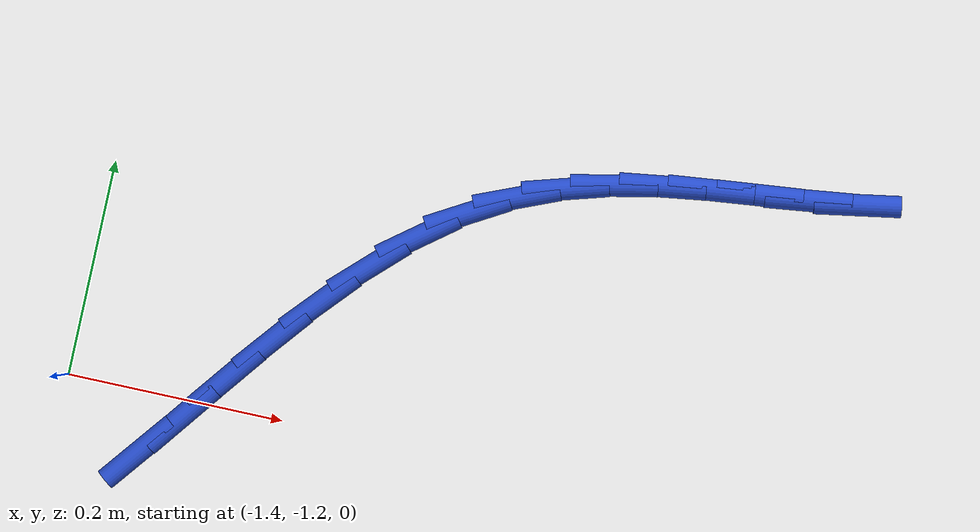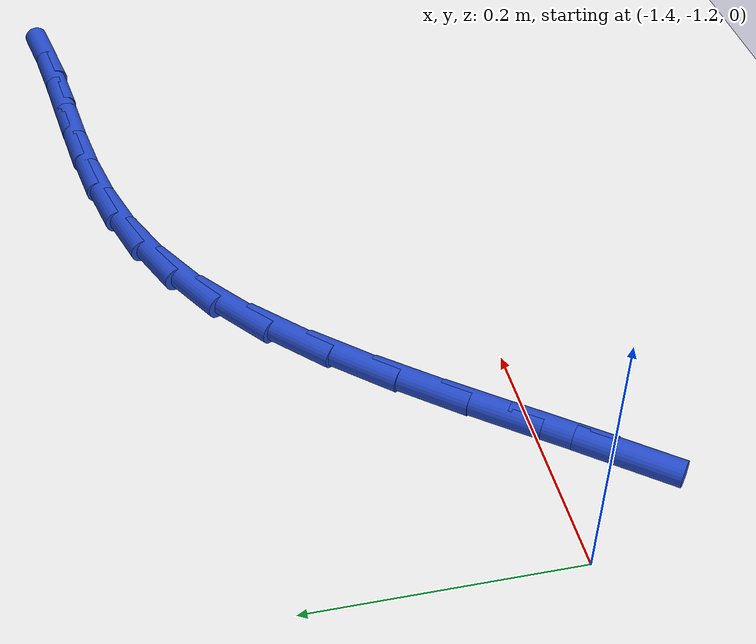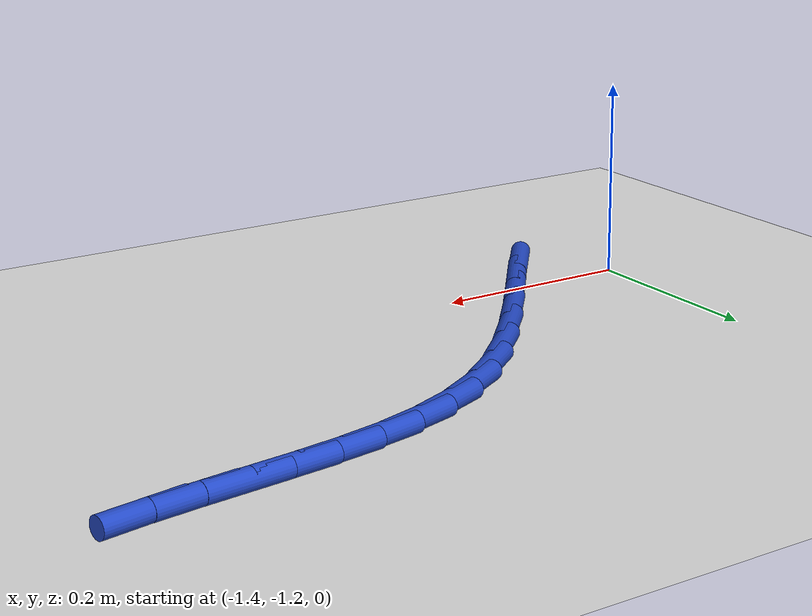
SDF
<sdf version="1.6">
 <world name="default">
  <model name="ground_plane">
   <static>1</static>
   <link name="link">
    <collision name="collision">
     <geometry><plane><normal>0 0 1</normal><size>100 100</size></plane></geometry>
     <surface><friction><ode><mu>100</mu><mu2>50</mu2></ode></friction></surface>
    </collision>
    <visual name="visual">
     <cast_shadows>0</cast_shadows>
     <geometry><plane><normal>0 0 1</normal><size>100 100</size></plane></geometry>
     <material>
      <script><uri>file://media/materials/scripts/gazebo.material</uri><name>Gazebo/WhiteGlow</name></script>
     </material>
    </visual>
   </link>
  </model>
  <model name="line">
   <link name="link_137">
    <pose>-1.3216248220232105 -1.2552656752545743 0.01 0 1.57 0.9041960330804829</pose>
    <collision name="collision">
     <geometry><cylinder><radius>0.01</radius><length>0.08</length></cylinder></geometry>
    </collision>
    <visual name="visual">
     <material>
      <script><name>Gazebo/Blue</name><uri>file://media/materials/scripts/gazebo.material</uri></script>
     </material>
     <geometry><cylinder><radius>0.01</radius><length>0.08</length></cylinder></geometry>
    </visual>
   </link>
   <link name="link_138">
    <pose>-1.2908119132237001 -1.216100146849403 0.01 0 1.57 0.9195410733645156</pose>
    <collision name="collision">
     <geometry><cylinder><radius>0.01</radius><length>0.08</length></cylinder></geometry>
    </collision>
    <visual name="visual">
     <material>
      <script><name>Gazebo/Blue</name><uri>file://media/materials/scripts/gazebo.material</uri></script>
     </material>
     <geometry><cylinder><radius>0.01</radius><length>0.08</length></cylinder></geometry>
    </visual>
   </link>
   <link name="link_139">
    <pose>-1.2584321449544706 -1.1736174365065088 0.01 0 1.57 0.9132504159072549</pose>
    <collision name="collision">
     <geometry><cylinder><radius>0.01</radius><length>0.08</length></cylinder></geometry>
    </collision>
    <visual name="visual">
     <material>
      <script><name>Gazebo/Blue</name><uri>file://media/materials/scripts/gazebo.material</uri></script>
     </material>
     <geometry><cylinder><radius>0.01</radius><length>0.08</length></cylinder></geometry>
    </visual>
   </link>
   <link name="link_140">
    <pose>-1.2245333920120067 -1.1297173761055197 0.01 0 1.57 0.8871897794325092</pose>
    <collision name="collision">
     <geometry><cylinder><radius>0.01</radius><length>0.08</length></cylinder></geometry>
    </collision>
    <visual name="visual">
     <material>
      <script><name>Gazebo/Blue</name><uri>file://media/materials/scripts/gazebo.material</uri></script>
     </material>
     <geometry><cylinder><radius>0.01</radius><length>0.08</length></cylinder></geometry>
    </visual>
   </link>
   <link name="link_141">
    <pose>-1.1891635291927904 -1.0862997975260622 0.01 0 1.57 0.839850976864095</pose>
    <collision name="collision">
     <geometry><cylinder><radius>0.01</radius><length>0.08</length></cylinder></geometry>
    </collision>
    <visual name="visual">
     <material>
      <script><name>Gazebo/Blue</name><uri>file://media/materials/scripts/gazebo.material</uri></script>
     </material>
     <geometry><cylinder><radius>0.01</radius><length>0.08</length></cylinder></geometry>
    </visual>
   </link>
   <link name="link_142">
    <pose>-1.1523704312933039 -1.0452645326477616 0.01 0 1.57 0.7665094719610764</pose>
    <collision name="collision">
     <geometry><cylinder><radius>0.01</radius><length>0.08</length></cylinder></geometry>
    </collision>
    <visual name="visual">
     <material>
      <script><name>Gazebo/Blue</name><uri>file://media/materials/scripts/gazebo.material</uri></script>
     </material>
     <geometry><cylinder><radius>0.01</radius><length>0.08</length></cylinder></geometry>
    </visual>
   </link>
   <link name="link_143">
    <pose>-1.1142019731100312 -1.0085114133502464 0.01 0 1.57 0.6588819173454284</pose>
    <collision name="collision">
     <geometry><cylinder><radius>0.01</radius><length>0.08</length></cylinder></geometry>
    </collision>
    <visual name="visual">
     <material>
      <script><name>Gazebo/Blue</name><uri>file://media/materials/scripts/gazebo.material</uri></script>
     </material>
     <geometry><cylinder><radius>0.01</radius><length>0.08</length></cylinder></geometry>
    </visual>
   </link>
   <link name="link_144">
    <pose>-1.074706456589048 -0.9779294457097585 0.01 0 1.57 0.5240561417923808</pose>
    <collision name="collision">
     <geometry><cylinder><radius>0.01</radius><length>0.08</length></cylinder></geometry>
    </collision>
    <visual name="visual">
     <material>
      <script><name>Gazebo/Blue</name><uri>file://media/materials/scripts/gazebo.material</uri></script>
     </material>
     <geometry><cylinder><radius>0.01</radius><length>0.08</length></cylinder></geometry>
    </visual>
   </link>
   <link name="link_145">
    <pose>-1.0339724617813286 -0.954386815809934 0.01 0 1.57 0.39595761540962804</pose>
    <collision name="collision">
     <geometry><cylinder><radius>0.01</radius><length>0.08</length></cylinder></geometry>
    </collision>
    <visual name="visual">
     <material>
      <script><name>Gazebo/Blue</name><uri>file://media/materials/scripts/gazebo.material</uri></script>
     </material>
     <geometry><cylinder><radius>0.01</radius><length>0.08</length></cylinder></geometry>
    </visual>
   </link>
   <link name="link_146">
    <pose>-0.9921613060922647 -0.9369082330915484 0.01 0 1.57 0.2864587631625439</pose>
    <collision name="collision">
     <geometry><cylinder><radius>0.01</radius><length>0.08</length></cylinder></geometry>
    </collision>
    <visual name="visual">
     <material>
      <script><name>Gazebo/Blue</name><uri>file://media/materials/scripts/gazebo.material</uri></script>
     </material>
     <geometry><cylinder><radius>0.01</radius><length>0.08</length></cylinder></geometry>
    </visual>
   </link>
   <link name="link_147">
    <pose>-0.9494419457157085 -0.9243248073213283 0.01 0 1.57 0.20105322942136852</pose>
    <collision name="collision">
     <geometry><cylinder><radius>0.01</radius><length>0.08</length></cylinder></geometry>
    </collision>
    <visual name="visual">
     <material>
      <script><name>Gazebo/Blue</name><uri>file://media/materials/scripts/gazebo.material</uri></script>
     </material>
     <geometry><cylinder><radius>0.01</radius><length>0.08</length></cylinder></geometry>
    </visual>
   </link>
   <link name="link_148">
    <pose>-0.9059833368455118 -0.9154676482660011 0.01 0 1.57 0.14211828316470465</pose>
    <collision name="collision">
     <geometry><cylinder><radius>0.01</radius><length>0.08</length></cylinder></geometry>
    </collision>
    <visual name="visual">
     <material>
      <script><name>Gazebo/Blue</name><uri>file://media/materials/scripts/gazebo.material</uri></script>
     </material>
     <geometry><cylinder><radius>0.01</radius><length>0.08</length></cylinder></geometry>
    </visual>
   </link>
   <link name="link_149">
    <pose>-0.8619544356755284 -0.9091678656922947 0.01 0 1.57 0.11009254805381886</pose>
    <collision name="collision">
     <geometry><cylinder><radius>0.01</radius><length>0.08</length></cylinder></geometry>
    </collision>
    <visual name="visual">
     <material>
      <script><name>Gazebo/Blue</name><uri>file://media/materials/scripts/gazebo.material</uri></script>
     </material>
     <geometry><cylinder><radius>0.01</radius><length>0.08</length></cylinder></geometry>
    </visual>
   </link>
   <link name="link_150">
    <pose>-0.8175241983996098 -0.9042565693669358 0.01 0 1.57 0.10466372869830722</pose>
    <collision name="collision">
     <geometry><cylinder><radius>0.01</radius><length>0.08</length></cylinder></geometry>
    </collision>
    <visual name="visual">
     <material>
      <script><name>Gazebo/Blue</name><uri>file://media/materials/scripts/gazebo.material</uri></script>
     </material>
     <geometry><cylinder><radius>0.01</radius><length>0.08</length></cylinder></geometry>
    </visual>
   </link>
   <link name="link_151">
    <pose>-0.7728615812116086 -0.8995648690566521 0.01 0 1.57 0.12546083003387243</pose>
    <collision name="collision">
     <geometry><cylinder><radius>0.01</radius><length>0.08</length></cylinder></geometry>
    </collision>
    <visual name="visual">
     <material>
      <script><name>Gazebo/Blue</name><uri>file://media/materials/scripts/gazebo.material</uri></script>
     </material>
     <geometry><cylinder><radius>0.01</radius><length>0.08</length></cylinder></geometry>
    </visual>
   </link>
   <link name="link_152">
    <pose>-0.7281355403053773 -0.8939238745281708 0.01 0 1.57 0.16978933108816624</pose>
    <collision name="collision">
     <geometry><cylinder><radius>0.01</radius><length>0.08</length></cylinder></geometry>
    </collision>
    <visual name="visual">
     <material>
      <script><name>Gazebo/Blue</name><uri>file://media/materials/scripts/gazebo.material</uri></script>
     </material>
     <geometry><cylinder><radius>0.01</radius><length>0.08</length></cylinder></geometry>
    </visual>
   </link>
  </model>
 </world>
</sdf>
